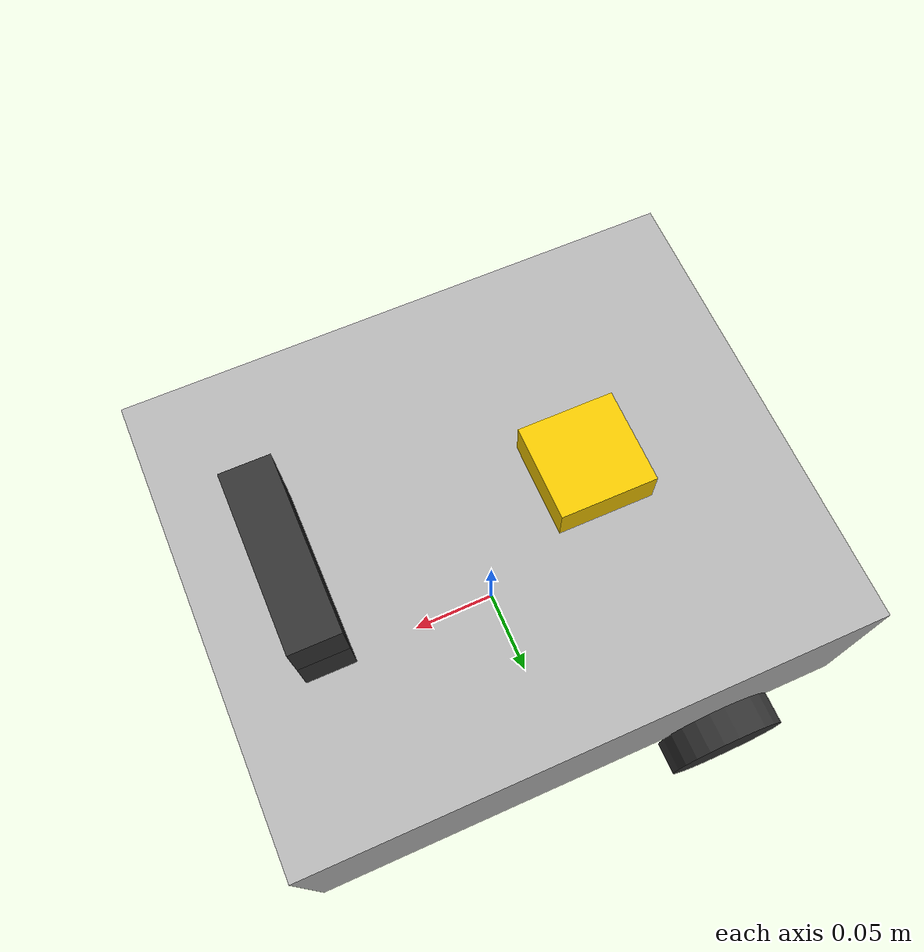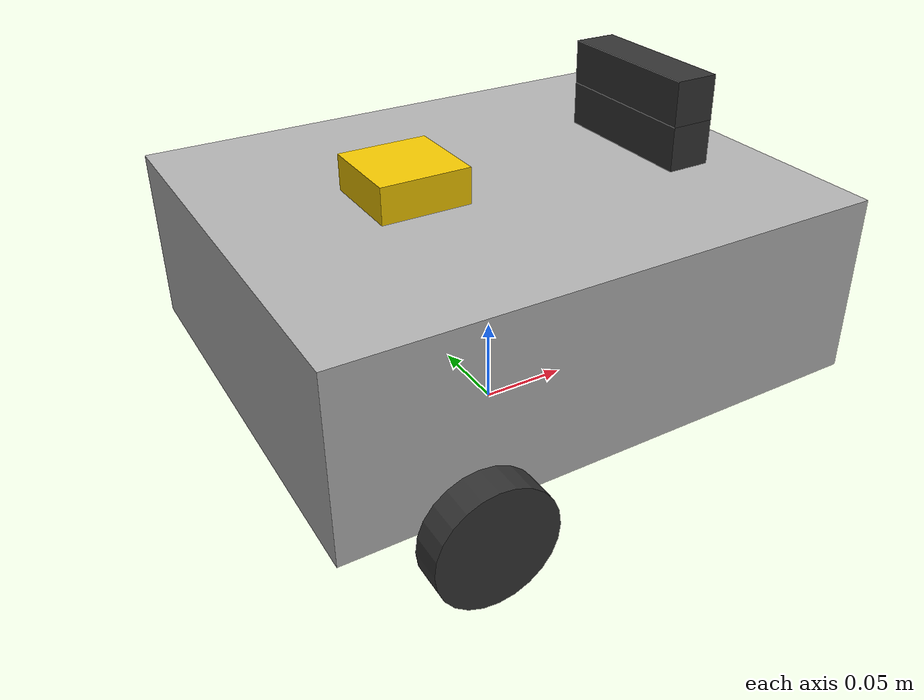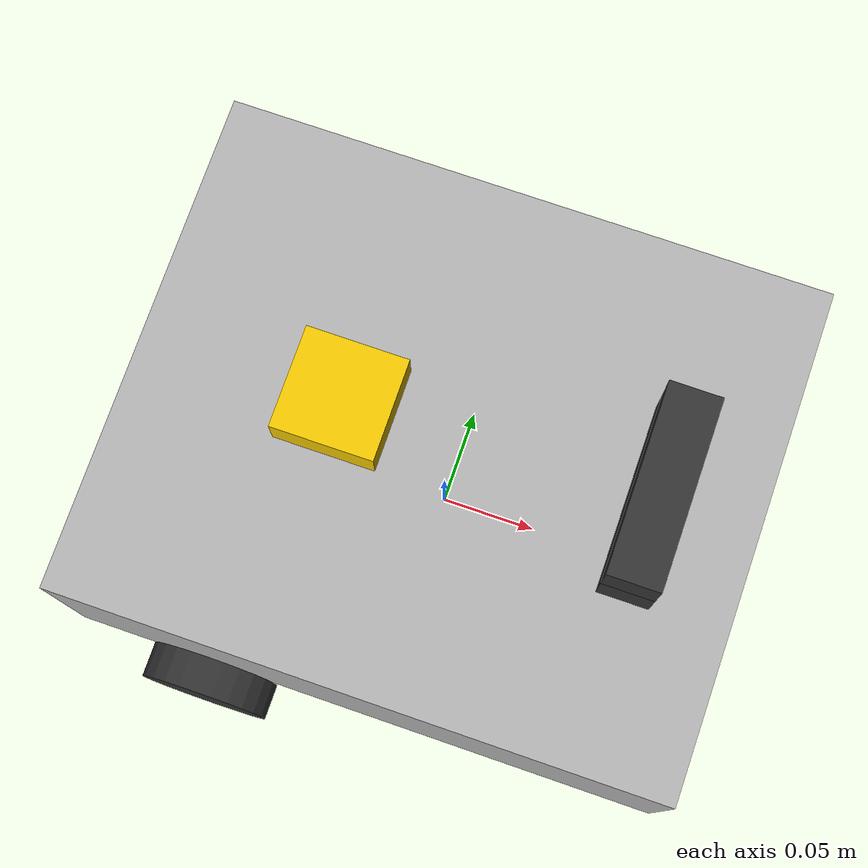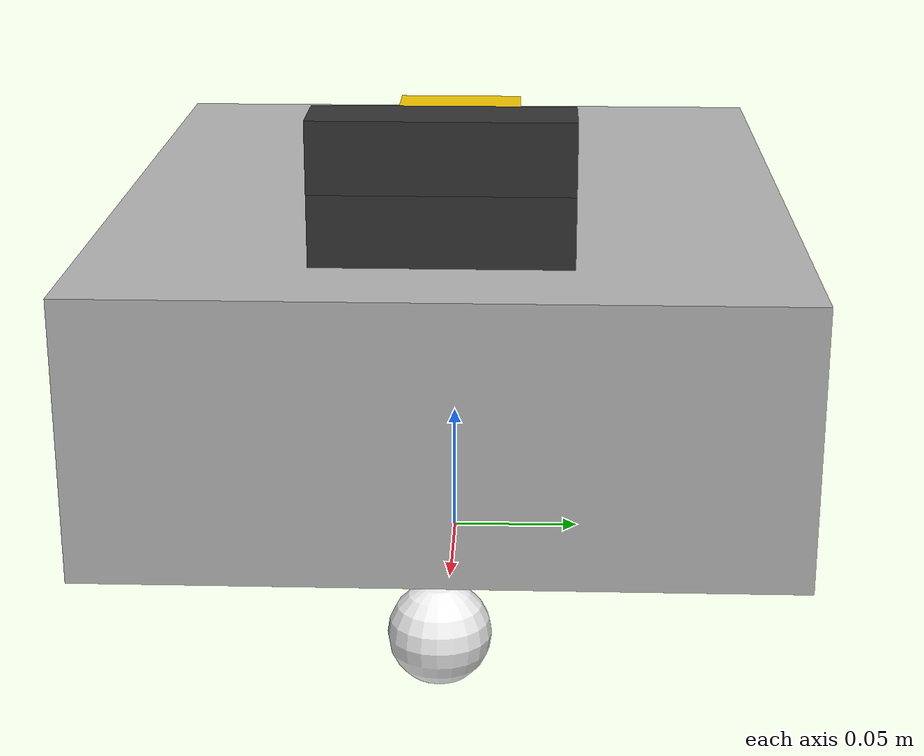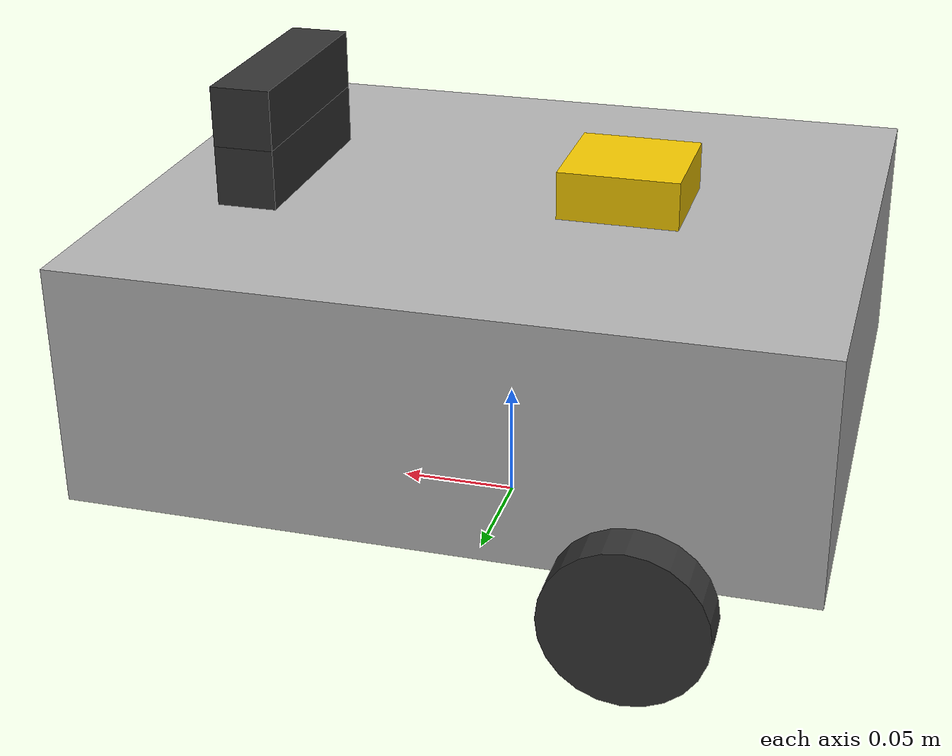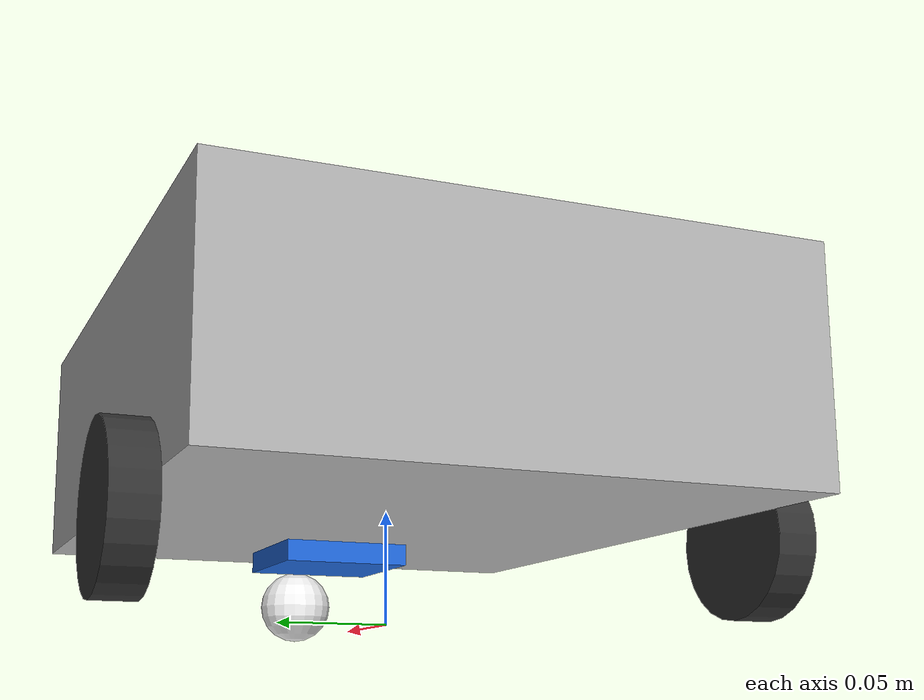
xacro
<?xml version="1.0"?>
<robot xmlns:xacro="http://www.ros.org/wiki/xacro"
       name="vacuum_robot">

  <xacro:include filename="$(find vacuum_description)/urdf/_properties.xacro"/>
  <xacro:include filename="$(find vacuum_description)/urdf/_materials.xacro"/>
  <xacro:include filename="$(find vacuum_description)/urdf/_macros.xacro"/>
  <xacro:include filename="$(find vacuum_description)/urdf/_base.xacro"/>
  <xacro:include filename="$(find vacuum_description)/urdf/_wheels.xacro"/>
  <xacro:include filename="$(find vacuum_description)/urdf/_ros2_control.xacro"/>
  <xacro:include filename="$(find vacuum_description)/urdf/_sensors.xacro"/>
  <xacro:include filename="$(find vacuum_description)/urdf/_gazebo.xacro"/>

</robot>

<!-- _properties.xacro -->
<robot xmlns:xacro="http://www.ros.org/wiki/xacro">

  <!-- ═══════════════════════════════════════════════════════
       1. CHASSIS
       ═══════════════════════════════════════════════════════ -->
  <xacro:property name="chassis_length" value="0.300"/>
  <xacro:property name="chassis_width"  value="0.250"/>
  <xacro:property name="chassis_height" value="0.100"/>
  <xacro:property name="chassis_mass"   value="2.000"/>  <!-- kg   -->

  <!--
    Chassis inertia (box):
      Ixx = (1/12)*2.0*(0.25²+0.10²) = 0.012083 kg·m²
      Iyy = (1/12)*2.0*(0.30²+0.10²) = 0.016667 kg·m²
      Izz = (1/12)*2.0*(0.30²+0.25²) = 0.025417 kg·m²
  -->
  <xacro:property name="chassis_ixx" value="0.012083"/>
  <xacro:property name="chassis_iyy" value="0.016667"/>
  <xacro:property name="chassis_izz" value="0.025417"/>

  <!-- ═══════════════════════════════════════════════════════
       2. DRIVE WHEELS
       ═══════════════════════════════════════════════════════ -->
  <xacro:property name="wheel_radius"     value="0.033"/>
  <xacro:property name="wheel_thickness"  value="0.018"/>
  <xacro:property name="wheel_mass"       value="0.250"/>  <!-- kg -->
  <!-- wheel_separation: distance between wheel centre-planes -->
  <xacro:property name="wheel_separation" value="0.268"/>

  <!--
    Wheel inertia (cylinder, rotation axis = y):
      Ixx=Izz = (1/12)*0.25*(3*0.033²+0.018²) = 7.484e-5 kg·m²
      Iyy     = (1/2) *0.25*(0.033²)           = 1.361e-4 kg·m²
  -->
  <xacro:property name="wheel_ixx" value="0.000074843"/>
  <xacro:property name="wheel_iyy" value="0.000136125"/>
  <xacro:property name="wheel_izz" value="0.000074843"/>

  <!-- ═══════════════════════════════════════════════════════
       3. CASTER WHEEL  (passive front ball caster)
       ═══════════════════════════════════════════════════════ -->
  <xacro:property name="caster_radius" value="0.018"/>
  <xacro:property name="caster_mass"   value="0.050"/>  <!-- kg -->

  <!--
    Caster inertia (sphere):
      I = (2/5)*0.05*(0.018²) = 6.48e-6 kg·m²
  -->
  <xacro:property name="caster_ixx" value="0.0000065"/>
  <xacro:property name="caster_iyy" value="0.0000065"/>
  <xacro:property name="caster_izz" value="0.0000065"/>

  <!-- ═══════════════════════════════════════════════════════
       4. DERIVED POSITIONAL CONSTANTS
       ═══════════════════════════════════════════════════════ -->

  <xacro:property name="base_link_z"     value="0.093"/>  <!-- m above ground -->

  <xacro:property name="wheel_joint_x"   value="-0.080"/>
  <xacro:property name="wheel_joint_z"   value="-0.060"/>
  <xacro:property name="wheel_joint_y"   value="0.134"/>  <!-- half separation -->

  <xacro:property name="caster_joint_x"  value="0.132"/>
  <xacro:property name="caster_joint_z"  value="-0.075"/>

  <!-- ═══════════════════════════════════════════════════════
       5. SENSOR / MODULE MOUNTS  (placeholder geometry)
       ═══════════════════════════════════════════════════════ -->

  <!-- Intel D435i camera mount — front top of chassis -->
  <xacro:property name="camera_mount_length" value="0.025"/>
  <xacro:property name="camera_mount_width"  value="0.090"/>
  <xacro:property name="camera_mount_height" value="0.025"/>
  <xacro:property name="camera_mount_mass"   value="0.050"/>  <!-- kg -->
  <xacro:property name="camera_mount_x"      value="0.100"/>
  <!-- Sits on top of chassis: chassis_top_in_base_link + half_own_height -->
  <!-- chassis top from base_link = +chassis_height/2 = +0.050 -->
  <xacro:property name="camera_mount_z"
    value="${chassis_height/2 + camera_mount_height/2}"/>

  <!-- Robotic arm mount — rear top of chassis -->
  <xacro:property name="arm_mount_length" value="0.050"/>
  <xacro:property name="arm_mount_width"  value="0.050"/>
  <xacro:property name="arm_mount_height" value="0.020"/>
  <xacro:property name="arm_mount_mass"   value="0.050"/>
  <xacro:property name="arm_mount_x"      value="-0.050"/>
  <xacro:property name="arm_mount_z"
    value="${chassis_height/2 + arm_mount_height/2}"/>

  <!-- Vacuum module mount — front bottom of chassis -->
  <xacro:property name="vacuum_mount_length" value="0.060"/>
  <xacro:property name="vacuum_mount_width"  value="0.060"/>
  <xacro:property name="vacuum_mount_height" value="0.010"/>
  <xacro:property name="vacuum_mount_mass"   value="0.100"/>
  <xacro:property name="vacuum_mount_x"      value="0.080"/>
  <!-- Hangs below chassis: -(chassis_height/2 + half_own_height) -->
  <xacro:property name="vacuum_mount_z"
    value="${-(chassis_height/2 + vacuum_mount_height/2)}"/>

  <!-- D435i body: 90mm W x 25mm H x 25mm D, 72g -->
  <xacro:property name="d435i_body_x" value="0.025"/>  <!-- depth into scene -->
  <xacro:property name="d435i_body_y" value="0.090"/>  <!-- width -->
  <xacro:property name="d435i_body_z" value="0.025"/>  <!-- height -->
  <xacro:property name="d435i_mass"   value="0.072"/>  <!-- kg -->

  <xacro:property name="d435i_ixx" value="0.0000524"/>
  <xacro:property name="d435i_iyy" value="0.0000075"/>
  <xacro:property name="d435i_izz" value="0.0000524"/>

  <!-- camera_link offset from camera_mount_link (sits on top) -->
  <xacro:property name="camera_link_x" value="0.0"/>
  <xacro:property name="camera_link_y" value="0.0"/>
  <xacro:property name="camera_link_z"
    value="${camera_mount_height/2 + d435i_body_z/2}"/>

  <!-- colour module: +11.5mm right on real hw; co-located in sim -->
  <xacro:property name="camera_color_x" value="0.0"/>
  <xacro:property name="camera_color_y" value="0.0"/>
  <xacro:property name="camera_color_z" value="0.0"/>

  <!-- depth module: at body centre on real hw -->
  <xacro:property name="camera_depth_x" value="0.0"/>
  <xacro:property name="camera_depth_y" value="0.0"/>
  <xacro:property name="camera_depth_z" value="0.0"/>

  <!--
    Optical frame rotation: robot convention (x-fwd) to optical (z-fwd,x-right,y-down)
    rpy = "-pi/2  0  -pi/2"
  -->
  <xacro:property name="optical_roll"  value="-1.5707963"/>
  <xacro:property name="optical_pitch" value="0.0"/>
  <xacro:property name="optical_yaw"   value="-1.5707963"/>

  <!-- D435i Gazebo sensor parameters (baked at Xacro expansion; tune via camera.yaml) -->
  <xacro:property name="d435i_color_width"  value="640"/>
  <xacro:property name="d435i_color_height" value="480"/>
  <xacro:property name="d435i_color_fps"    value="30"/>
  <xacro:property name="d435i_color_hfov"   value="1.2112"/>  <!-- 69.4 deg -->

  <xacro:property name="d435i_depth_width"  value="640"/>
  <xacro:property name="d435i_depth_height" value="480"/>
  <xacro:property name="d435i_depth_fps"    value="30"/>
  <xacro:property name="d435i_depth_hfov"   value="1.5010"/>  <!-- 86.0 deg -->

  <xacro:property name="d435i_near_clip"    value="0.105"/>
  <xacro:property name="d435i_far_clip"     value="10.0"/>

</robot>

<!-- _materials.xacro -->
<!--
  _materials.xacro
  ────────────────
  Material definitions for RViz visualisation.
  Gazebo material overrides are in _gazebo.xacro.
-->
<robot xmlns:xacro="http://www.ros.org/wiki/xacro">

  <material name="black">
    <color rgba="0.05 0.05 0.05 1.0"/>
  </material>

  <material name="dark_grey">
    <color rgba="0.20 0.20 0.20 1.0"/>
  </material>

  <material name="light_grey">
    <color rgba="0.70 0.70 0.70 1.0"/>
  </material>

  <material name="white">
    <color rgba="0.95 0.95 0.95 1.0"/>
  </material>

  <material name="blue">
    <color rgba="0.12 0.40 0.85 1.0"/>
  </material>

  <material name="yellow">
    <color rgba="0.95 0.78 0.00 1.0"/>
  </material>

  <material name="red">
    <color rgba="0.82 0.10 0.10 1.0"/>
  </material>

  <material name="orange">
    <color rgba="1.00 0.50 0.00 1.0"/>
  </material>

  <material name="green">
    <color rgba="0.10 0.70 0.20 1.0"/>
  </material>

</robot>

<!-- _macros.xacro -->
<robot xmlns:xacro="http://www.ros.org/wiki/xacro">

  <!-- ═══════════════════════════════════════════════════════
       INERTIA MACROS
       ═══════════════════════════════════════════════════════ -->

  <xacro:macro name="box_inertia" params="m x y z">
    <inertial>
      <origin xyz="0 0 0" rpy="0 0 0"/>
      <mass value="${m}"/>
      <inertia
        ixx="${(1.0/12.0) * m * (y*y + z*z)}" ixy="0.0" ixz="0.0"
        iyy="${(1.0/12.0) * m * (x*x + z*z)}" iyz="0.0"
        izz="${(1.0/12.0) * m * (x*x + y*y)}"/>
    </inertial>
  </xacro:macro>

  <xacro:macro name="cylinder_inertia" params="m r h">
    <inertial>
      <origin xyz="0 0 0" rpy="0 0 0"/>
      <mass value="${m}"/>
      <inertia
        ixx="${(1.0/12.0) * m * (3.0*r*r + h*h)}" ixy="0.0" ixz="0.0"
        iyy="${0.5 * m * r * r}"                   iyz="0.0"
        izz="${(1.0/12.0) * m * (3.0*r*r + h*h)}"/>
    </inertial>
  </xacro:macro>

  <!--
    sphere_inertia
    ──────────────
    Params: m=mass(kg)  r=radius(m)

    Formula: Ixx = Iyy = Izz = (2/5)*m*r²
  -->
  <xacro:macro name="sphere_inertia" params="m r">
    <inertial>
      <origin xyz="0 0 0" rpy="0 0 0"/>
      <mass value="${m}"/>
      <inertia
        ixx="${0.4 * m * r * r}" ixy="0.0" ixz="0.0"
        iyy="${0.4 * m * r * r}" iyz="0.0"
        izz="${0.4 * m * r * r}"/>
    </inertial>
  </xacro:macro>

  <!-- ═══════════════════════════════════════════════════════
       DRIVE WHEEL MACRO
       ═══════════════════════════════════════════════════════ -->
  <xacro:macro name="drive_wheel" params="name parent y_reflect">

    <link name="${name}_link">
      <xacro:cylinder_inertia
        m="${wheel_mass}" r="${wheel_radius}" h="${wheel_thickness}"/>

      <!-- Visual — cylinder rotated to lie along y-axis -->
      <visual>
        <origin xyz="0 0 0" rpy="${pi/2} 0 0"/>
        <geometry>
          <cylinder radius="${wheel_radius}" length="${wheel_thickness}"/>
        </geometry>
        <material name="dark_grey"/>
      </visual>

      <!-- Collision — same geometry -->
      <collision>
        <origin xyz="0 0 0" rpy="${pi/2} 0 0"/>
        <geometry>
          <cylinder radius="${wheel_radius}" length="${wheel_thickness}"/>
        </geometry>
      </collision>
    </link>

    <joint name="${name}_joint" type="continuous">
      <parent link="${parent}"/>
      <child  link="${name}_link"/>
      <origin xyz="${wheel_joint_x} ${y_reflect * wheel_joint_y} ${wheel_joint_z}"
              rpy="0 0 0"/>
      <axis xyz="0 1 0"/>
      <!-- Light damping prevents run-away spinning; mild friction simulates rubber -->
      <dynamics damping="0.01" friction="0.10"/>
    </joint>

  </xacro:macro>

  <!-- ═══════════════════════════════════════════════════════
       MOUNT PLACEHOLDER MACRO
       ═══════════════════════════════════════════════════════ -->
  <xacro:macro name="mount_placeholder" params="name parent x y z l w h mass mat">

    <link name="${name}_link">
      <xacro:box_inertia m="${mass}" x="${l}" y="${w}" z="${h}"/>

      <visual>
        <origin xyz="0 0 0" rpy="0 0 0"/>
        <geometry>
          <box size="${l} ${w} ${h}"/>
        </geometry>
        <material name="${mat}"/>
      </visual>

      <collision>
        <origin xyz="0 0 0" rpy="0 0 0"/>
        <geometry>
          <box size="${l} ${w} ${h}"/>
        </geometry>
      </collision>
    </link>

    <joint name="${name}_joint" type="fixed">
      <parent link="${parent}"/>
      <child  link="${name}_link"/>
      <origin xyz="${x} ${y} ${z}" rpy="0 0 0"/>
    </joint>

  </xacro:macro>

</robot>

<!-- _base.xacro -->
<robot xmlns:xacro="http://www.ros.org/wiki/xacro">

  <!-- ── base_footprint ─────────────────────────────────────────── -->
  <!-- Virtual ground-plane reference frame. Zero mass, no collision.
       Nav2 uses this as the robot's 2D footprint frame. -->
  <link name="base_footprint"/>

  <!-- Fixed joint lifts base_link to the correct height above ground -->
  <joint name="base_footprint_joint" type="fixed">
    <parent link="base_footprint"/>
    <child  link="base_link"/>
    <origin xyz="0.0 0.0 ${base_link_z}" rpy="0.0 0.0 0.0"/>
  </joint>

  <!-- ── base_link ──────────────────────────────────────────────── -->
  <!-- Chassis body: rectangular box representing the robot platform.
       Origin is at the geometric centre of the box (ROS convention).
       Inertia computed for a uniform-density rectangular prism. -->
  <link name="base_link">
    <inertial>
      <origin xyz="0 0 0" rpy="0 0 0"/>
      <mass value="${chassis_mass}"/>
      <inertia
        ixx="${chassis_ixx}" ixy="0.0" ixz="0.0"
        iyy="${chassis_iyy}" iyz="0.0"
        izz="${chassis_izz}"/>
    </inertial>

    <visual>
      <origin xyz="0.0 0.0 0.0" rpy="0.0 0.0 0.0"/>
      <geometry>
        <box size="${chassis_length} ${chassis_width} ${chassis_height}"/>
      </geometry>
      <material name="light_grey"/>
    </visual>

    <collision>
      <origin xyz="0.0 0.0 0.0" rpy="0.0 0.0 0.0"/>
      <geometry>
        <box size="${chassis_length} ${chassis_width} ${chassis_height}"/>
      </geometry>
    </collision>
  </link>

</robot>

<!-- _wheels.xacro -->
<robot xmlns:xacro="http://www.ros.org/wiki/xacro">

  <!-- ── Left drive wheel  (y = +wheel_joint_y) ────────────────── -->
  <xacro:drive_wheel name="left_wheel"  parent="base_link" y_reflect="1"/>

  <!-- ── Right drive wheel (y = -wheel_joint_y) ────────────────── -->
  <xacro:drive_wheel name="right_wheel" parent="base_link" y_reflect="-1"/>

  <!-- ── Caster wheel (passive front support) ───────────────────── -->
  <link name="caster_wheel_link">
    <xacro:sphere_inertia m="${caster_mass}" r="${caster_radius}"/>

    <visual>
      <origin xyz="0 0 0" rpy="0 0 0"/>
      <geometry>
        <sphere radius="${caster_radius}"/>
      </geometry>
      <material name="white"/>
    </visual>

    <collision>
      <origin xyz="0 0 0" rpy="0 0 0"/>
      <geometry>
        <sphere radius="${caster_radius}"/>
      </geometry>
    </collision>
  </link>

  <!-- Fixed joint: caster does not independently rotate in model.
       Near-zero friction in _gazebo.xacro handles the free-roll behaviour. -->
  <joint name="caster_wheel_joint" type="fixed">
    <parent link="base_link"/>
    <child  link="caster_wheel_link"/>
    <origin xyz="${caster_joint_x} 0.0 ${caster_joint_z}" rpy="0.0 0.0 0.0"/>
  </joint>

</robot>

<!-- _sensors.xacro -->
<robot xmlns:xacro="http://www.ros.org/wiki/xacro">

  <!-- ── camera_mount_link (Stage 1 placeholder kept unchanged) ─── -->
  <xacro:mount_placeholder
    name="camera_mount"
    parent="base_link"
    x="${camera_mount_x}"
    y="0.0"
    z="${camera_mount_z}"
    l="${camera_mount_length}"
    w="${camera_mount_width}"
    h="${camera_mount_height}"
    mass="${camera_mount_mass}"
    mat="dark_grey"/>

  <!-- ═══════════════════════════════════════════════════════
       camera_link — physical body of the D435i
       ═══════════════════════════════════════════════════════ -->
  <!--
    Sits on top of camera_mount_link.
    z-offset = mount_height/2 + d435i_body_z/2  (see _properties.xacro).
    This link represents the geometric centre of the D435i enclosure.
  -->
  <joint name="camera_joint" type="fixed">
    <parent link="camera_mount_link"/>
    <child  link="camera_link"/>
    <origin xyz="${camera_link_x} ${camera_link_y} ${camera_link_z}"
            rpy="0 0 0"/>
  </joint>

  <link name="camera_link">
    <visual>
      <origin xyz="0 0 0" rpy="0 0 0"/>
      <geometry>
        <box size="${d435i_body_x} ${d435i_body_y} ${d435i_body_z}"/>
      </geometry>
      <material name="dark_grey"/>
    </visual>
    <collision>
      <origin xyz="0 0 0" rpy="0 0 0"/>
      <geometry>
        <box size="${d435i_body_x} ${d435i_body_y} ${d435i_body_z}"/>
      </geometry>
    </collision>
    <inertial>
      <origin xyz="0 0 0" rpy="0 0 0"/>
      <mass value="${d435i_mass}"/>
      <inertia
        ixx="${d435i_ixx}" ixy="0" ixz="0"
        iyy="${d435i_iyy}" iyz="0"
        izz="${d435i_izz}"/>
    </inertial>
  </link>

  <joint name="camera_color_joint" type="fixed">
    <parent link="camera_link"/>
    <child  link="camera_color_frame"/>
    <origin xyz="${camera_color_x} ${camera_color_y} ${camera_color_z}"
            rpy="0 0 0"/>
  </joint>

  <link name="camera_color_frame">
    <!-- Massless optical frame — no visual/collision/inertial needed -->
  </link>

  <joint name="camera_color_optical_joint" type="fixed">
    <parent link="camera_color_frame"/>
    <child  link="camera_color_optical_frame"/>
    <!--
      Standard optical rotation: x-right, y-down, z-into-scene.
      From robot convention: rpy = "-pi/2  0  -pi/2".
    -->
    <origin xyz="0 0 0"
            rpy="${optical_roll} ${optical_pitch} ${optical_yaw}"/>
  </joint>

  <link name="camera_color_optical_frame">
    <!-- Massless optical reference frame -->
  </link>

  <joint name="camera_depth_joint" type="fixed">
    <parent link="camera_link"/>
    <child  link="camera_depth_frame"/>
    <origin xyz="${camera_depth_x} ${camera_depth_y} ${camera_depth_z}"
            rpy="0 0 0"/>
  </joint>

  <link name="camera_depth_frame">
    <!-- Massless optical frame -->
  </link>

  <joint name="camera_depth_optical_joint" type="fixed">
    <parent link="camera_depth_frame"/>
    <child  link="camera_depth_optical_frame"/>
    <origin xyz="0 0 0"
            rpy="${optical_roll} ${optical_pitch} ${optical_yaw}"/>
  </joint>

  <link name="camera_depth_optical_frame">
    <!-- Massless optical reference frame -->
  </link>

  <!-- ── Arm and vacuum mounts (unchanged from Stage 1) ─────────── -->
  <xacro:mount_placeholder
    name="arm_mount"
    parent="base_link"
    x="${arm_mount_x}"
    y="0.0"
    z="${arm_mount_z}"
    l="${arm_mount_length}"
    w="${arm_mount_width}"
    h="${arm_mount_height}"
    mass="${arm_mount_mass}"
    mat="yellow"/>

  <xacro:mount_placeholder
    name="vacuum_mount"
    parent="base_link"
    x="${vacuum_mount_x}"
    y="0.0"
    z="${vacuum_mount_z}"
    l="${vacuum_mount_length}"
    w="${vacuum_mount_width}"
    h="${vacuum_mount_height}"
    mass="${vacuum_mount_mass}"
    mat="blue"/>

</robot>
